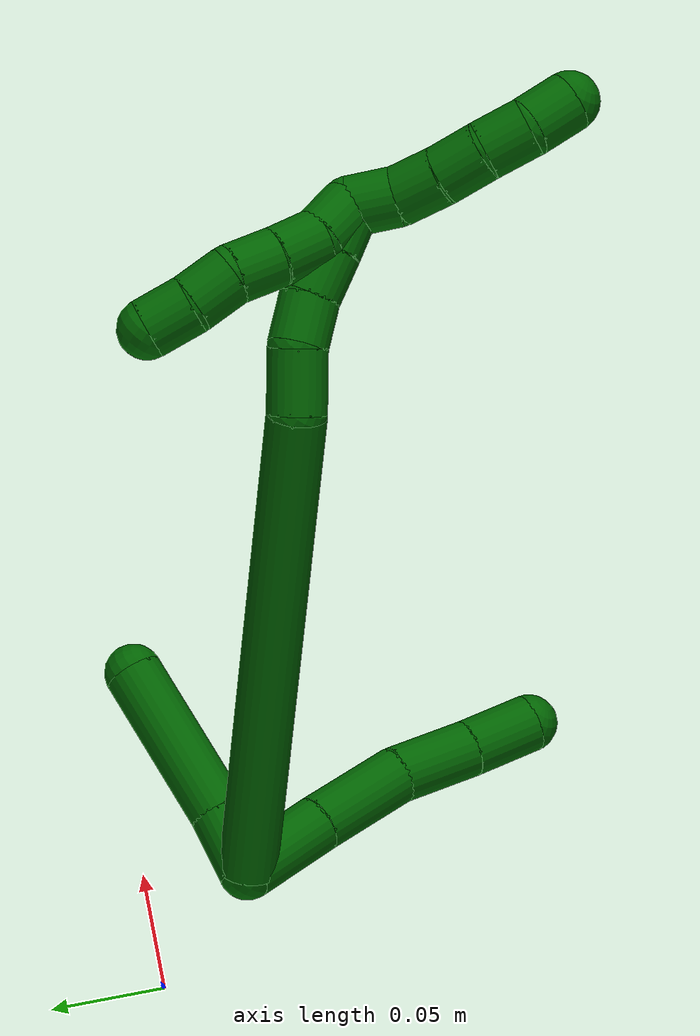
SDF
<sdf version="1.7">
 <world name="default">
  <model name="bin">
   <static>1</static>
   <link name="bottom">
    <collision name="collision-bottom">
     <pose>0 0 -0.01 0 -0 0</pose>
     <geometry><box><size>0.8 0.6 0.02</size></box></geometry>
     <surface>
      <friction><ode><mu>100</mu><mu2>100</mu2></ode></friction>
      <contact><collide_bitmask>65535</collide_bitmask></contact>
     </surface>
    </collision>
   </link>
   <link name="west_wall">
    <collision name="collision-west_wall">
     <pose>-0.41 0 0.1 0 -0 0</pose>
     <geometry><box><size>0.02 0.6 0.2</size></box></geometry>
     <surface>
      <friction><ode><mu>100</mu><mu2>100</mu2></ode></friction>
      <contact><collide_bitmask>65535</collide_bitmask></contact>
     </surface>
    </collision>
   </link>
   <link name="east_wall">
    <collision name="collision-east_wall">
     <pose>0.41 0 0.1 0 -0 0</pose>
     <geometry><box><size>0.02 0.6 0.2</size></box></geometry>
     <surface>
      <friction><ode><mu>100</mu><mu2>100</mu2></ode></friction>
      <contact><collide_bitmask>65535</collide_bitmask></contact>
     </surface>
    </collision>
   </link>
   <link name="south_wall">
    <collision name="collision-south_wall">
     <pose>0 -0.31 0.1 0 -0 0</pose>
     <geometry><box><size>0.8 0.02 0.2</size></box></geometry>
     <surface>
      <friction><ode><mu>100</mu><mu2>100</mu2></ode></friction>
      <contact><collide_bitmask>65535</collide_bitmask></contact>
     </surface>
    </collision>
   </link>
   <link name="north_wall">
    <collision name="collision-north_wall">
     <pose>0 0.31 0.1 0 -0 0</pose>
     <geometry><box><size>0.8 0.02 0.2</size></box></geometry>
     <surface>
      <friction><ode><mu>100</mu><mu2>100</mu2></ode></friction>
      <contact><collide_bitmask>65535</collide_bitmask></contact>
     </surface>
    </collision>
   </link>
  </model>
  <model name="6">
   <static>0</static>
   <link name="6">
    <collision name="collision-cylinder-e_1_2_8">
     <pose>0.001599 -0.016244 0.010715 0.987682 0.082006 0.044164</pose>
     <geometry><cylinder><radius>0.0125</radius><length>0.039052</length></cylinder></geometry>
     <surface>
      <friction><ode><mu>1.16</mu><mu2>1.16</mu2><slip1>0</slip1><slip2>0</slip2></ode></friction>
      <contact><ode><kp>1e+06</kp><kd>1</kd><max_vel>0</max_vel><min_depth>0.001</min_depth></ode></contact>
     </surface>
    </collision>
    <visual name="visual-cylinder-e_1_2_8">
     <pose>0.001599 -0.016244 0.010715 0.987682 0.082006 0.044164</pose>
     <geometry><cylinder><radius>0.0125</radius><length>0.039052</length></cylinder></geometry>
     <material><ambient>0 0.392157 0.003922 1</ambient></material>
    </visual>
    <collision name="collision-cylinder-e_2_8_9">
     <pose>0.004636 -0.051533 0.032965 1.0262 0.064464 0.03633</pose>
     <geometry><cylinder><radius>0.0125</radius><length>0.044622</length></cylinder></geometry>
     <surface>
      <friction><ode><mu>1.16</mu><mu2>1.16</mu2><slip1>0</slip1><slip2>0</slip2></ode></friction>
      <contact><ode><kp>1e+06</kp><kd>1</kd><max_vel>0</max_vel><min_depth>0.001</min_depth></ode></contact>
     </surface>
    </collision>
    <visual name="visual-cylinder-e_2_8_9">
     <pose>0.004636 -0.051533 0.032965 1.0262 0.064464 0.03633</pose>
     <geometry><cylinder><radius>0.0125</radius><length>0.044622</length></cylinder></geometry>
     <material><ambient>0 0.392157 0.003922 1</ambient></material>
    </visual>
    <collision name="collision-cylinder-e_3_9_10">
     <pose>0.003536 -0.085436 0.053906 1.00645 -0.143267 -0.078962</pose>
     <geometry><cylinder><radius>0.0125</radius><length>0.035538</length></cylinder></geometry>
     <surface>
      <friction><ode><mu>1.16</mu><mu2>1.16</mu2><slip1>0</slip1><slip2>0</slip2></ode></friction>
      <contact><ode><kp>1e+06</kp><kd>1</kd><max_vel>0</max_vel><min_depth>0.001</min_depth></ode></contact>
     </surface>
    </collision>
    <visual name="visual-cylinder-e_3_9_10">
     <pose>0.003536 -0.085436 0.053906 1.00645 -0.143267 -0.078962</pose>
     <geometry><cylinder><radius>0.0125</radius><length>0.035538</length></cylinder></geometry>
     <material><ambient>0 0.392157 0.003922 1</ambient></material>
    </visual>
    <collision name="collision-cylinder-e_4_10_6">
     <pose>-0.000816 -0.112855 0.072029 0.964082 -0.118205 -0.061898</pose>
     <geometry><cylinder><radius>0.0125</radius><length>0.030789</length></cylinder></geometry>
     <surface>
      <friction><ode><mu>1.16</mu><mu2>1.16</mu2><slip1>0</slip1><slip2>0</slip2></ode></friction>
      <contact><ode><kp>1e+06</kp><kd>1</kd><max_vel>0</max_vel><min_depth>0.001</min_depth></ode></contact>
     </surface>
    </collision>
    <visual name="visual-cylinder-e_4_10_6">
     <pose>-0.000816 -0.112855 0.072029 0.964082 -0.118205 -0.061898</pose>
     <geometry><cylinder><radius>0.0125</radius><length>0.030789</length></cylinder></geometry>
     <material><ambient>0 0.392157 0.003922 1</ambient></material>
    </visual>
    <collision name="collision-cylinder-e_1_2_11">
     <pose>0.013637 4.1e-05 0.003268 -0.012504 1.33561 -0.009862</pose>
     <geometry><cylinder><radius>0.0125</radius><length>0.028047</length></cylinder></geometry>
     <surface>
      <friction><ode><mu>1.16</mu><mu2>1.16</mu2><slip1>0</slip1><slip2>0</slip2></ode></friction>
      <contact><ode><kp>1e+06</kp><kd>1</kd><max_vel>0</max_vel><min_depth>0.001</min_depth></ode></contact>
     </surface>
    </collision>
    <visual name="visual-cylinder-e_1_2_11">
     <pose>0.013637 4.1e-05 0.003268 -0.012504 1.33561 -0.009862</pose>
     <geometry><cylinder><radius>0.0125</radius><length>0.028047</length></cylinder></geometry>
     <material><ambient>0 0.392157 0.003922 1</ambient></material>
    </visual>
    <collision name="collision-cylinder-e_2_11_5">
     <pose>0.062656 0.002279 0.012671 -0.343854 1.38864 -0.287167</pose>
     <geometry><cylinder><radius>0.0125</radius><length>0.071953</length></cylinder></geometry>
     <surface>
      <friction><ode><mu>1.16</mu><mu2>1.16</mu2><slip1>0</slip1><slip2>0</slip2></ode></friction>
      <contact><ode><kp>1e+06</kp><kd>1</kd><max_vel>0</max_vel><min_depth>0.001</min_depth></ode></contact>
     </surface>
    </collision>
    <visual name="visual-cylinder-e_2_11_5">
     <pose>0.062656 0.002279 0.012671 -0.343854 1.38864 -0.287167</pose>
     <geometry><cylinder><radius>0.0125</radius><length>0.071953</length></cylinder></geometry>
     <material><ambient>0 0.392157 0.003922 1</ambient></material>
    </visual>
    <collision name="collision-cylinder-e_1_2_12">
     <pose>0.042393 0.027026 0.093002 -0.282812 0.412598 -0.059566</pose>
     <geometry><cylinder><radius>0.0125</radius><length>0.211442</length></cylinder></geometry>
     <surface>
      <friction><ode><mu>1.16</mu><mu2>1.16</mu2><slip1>0</slip1><slip2>0</slip2></ode></friction>
      <contact><ode><kp>1e+06</kp><kd>1</kd><max_vel>0</max_vel><min_depth>0.001</min_depth></ode></contact>
     </surface>
    </collision>
    <visual name="visual-cylinder-e_1_2_12">
     <pose>0.042393 0.027026 0.093002 -0.282812 0.412598 -0.059566</pose>
     <geometry><cylinder><radius>0.0125</radius><length>0.211442</length></cylinder></geometry>
     <material><ambient>0 0.392157 0.003922 1</ambient></material>
    </visual>
    <collision name="collision-cylinder-e_2_12_13">
     <pose>0.093628 0.054766 0.196421 -0.068365 0.702628 -0.025065</pose>
     <geometry><cylinder><radius>0.0125</radius><length>0.027365</length></cylinder></geometry>
     <surface>
      <friction><ode><mu>1.16</mu><mu2>1.16</mu2><slip1>0</slip1><slip2>0</slip2></ode></friction>
      <contact><ode><kp>1e+06</kp><kd>1</kd><max_vel>0</max_vel><min_depth>0.001</min_depth></ode></contact>
     </surface>
    </collision>
    <visual name="visual-cylinder-e_2_12_13">
     <pose>0.093628 0.054766 0.196421 -0.068365 0.702628 -0.025065</pose>
     <geometry><cylinder><radius>0.0125</radius><length>0.027365</length></cylinder></geometry>
     <material><ambient>0 0.392157 0.003922 1</ambient></material>
    </visual>
    <collision name="collision-cylinder-e_3_13_14">
     <pose>0.108669 0.05253 0.2145 0.36744 0.646722 0.124382</pose>
     <geometry><cylinder><radius>0.0125</radius><length>0.020575</length></cylinder></geometry>
     <surface>
      <friction><ode><mu>1.16</mu><mu2>1.16</mu2><slip1>0</slip1><slip2>0</slip2></ode></friction>
      <contact><ode><kp>1e+06</kp><kd>1</kd><max_vel>0</max_vel><min_depth>0.001</min_depth></ode></contact>
     </surface>
    </collision>
    <visual name="visual-cylinder-e_3_13_14">
     <pose>0.108669 0.05253 0.2145 0.36744 0.646722 0.124382</pose>
     <geometry><cylinder><radius>0.0125</radius><length>0.020575</length></cylinder></geometry>
     <material><ambient>0 0.392157 0.003922 1</ambient></material>
    </visual>
    <collision name="collision-cylinder-e_4_14_15">
     <pose>0.119535 0.045707 0.230479 0.435845 0.470554 0.106066</pose>
     <geometry><cylinder><radius>0.0125</radius><length>0.020588</length></cylinder></geometry>
     <surface>
      <friction><ode><mu>1.16</mu><mu2>1.16</mu2><slip1>0</slip1><slip2>0</slip2></ode></friction>
      <contact><ode><kp>1e+06</kp><kd>1</kd><max_vel>0</max_vel><min_depth>0.001</min_depth></ode></contact>
     </surface>
    </collision>
    <visual name="visual-cylinder-e_4_14_15">
     <pose>0.119535 0.045707 0.230479 0.435845 0.470554 0.106066</pose>
     <geometry><cylinder><radius>0.0125</radius><length>0.020588</length></cylinder></geometry>
     <material><ambient>0 0.392157 0.003922 1</ambient></material>
    </visual>
    <collision name="collision-cylinder-e_5_15_1">
     <pose>0.129051 0.037997 0.246675 0.45316 0.505426 0.118925</pose>
     <geometry><cylinder><radius>0.0125</radius><length>0.020031</length></cylinder></geometry>
     <surface>
      <friction><ode><mu>1.16</mu><mu2>1.16</mu2><slip1>0</slip1><slip2>0</slip2></ode></friction>
      <contact><ode><kp>1e+06</kp><kd>1</kd><max_vel>0</max_vel><min_depth>0.001</min_depth></ode></contact>
     </surface>
    </collision>
    <visual name="visual-cylinder-e_5_15_1">
     <pose>0.129051 0.037997 0.246675 0.45316 0.505426 0.118925</pose>
     <geometry><cylinder><radius>0.0125</radius><length>0.020031</length></cylinder></geometry>
     <material><ambient>0 0.392157 0.003922 1</ambient></material>
    </visual>
    <collision name="collision-cylinder-e_1_1_16">
     <pose>0.131185 0.041464 0.248286 -2.28004 -0.275019 0.58497</pose>
     <geometry><cylinder><radius>0.0125</radius><length>0.02</length></cylinder></geometry>
     <surface>
      <friction><ode><mu>1.16</mu><mu2>1.16</mu2><slip1>0</slip1><slip2>0</slip2></ode></friction>
      <contact><ode><kp>1e+06</kp><kd>1</kd><max_vel>0</max_vel><min_depth>0.001</min_depth></ode></contact>
     </surface>
    </collision>
    <visual name="visual-cylinder-e_1_1_16">
     <pose>0.131185 0.041464 0.248286 -2.28004 -0.275019 0.58497</pose>
     <geometry><cylinder><radius>0.0125</radius><length>0.02</length></cylinder></geometry>
     <material><ambient>0 0.392157 0.003922 1</ambient></material>
    </visual>
    <collision name="collision-cylinder-e_2_16_17">
     <pose>0.129103 0.056745 0.236022 -2.21533 0.063419 -0.126875</pose>
     <geometry><cylinder><radius>0.0125</radius><length>0.02</length></cylinder></geometry>
     <surface>
      <friction><ode><mu>1.16</mu><mu2>1.16</mu2><slip1>0</slip1><slip2>0</slip2></ode></friction>
      <contact><ode><kp>1e+06</kp><kd>1</kd><max_vel>0</max_vel><min_depth>0.001</min_depth></ode></contact>
     </surface>
    </collision>
    <visual name="visual-cylinder-e_2_16_17">
     <pose>0.129103 0.056745 0.236022 -2.21533 0.063419 -0.126875</pose>
     <geometry><cylinder><radius>0.0125</radius><length>0.02</length></cylinder></geometry>
     <material><ambient>0 0.392157 0.003922 1</ambient></material>
    </visual>
    <collision name="collision-cylinder-e_3_17_18">
     <pose>0.131121 0.072499 0.223893 -2.23858 0.138889 -0.284937</pose>
     <geometry><cylinder><radius>0.0125</radius><length>0.02</length></cylinder></geometry>
     <surface>
      <friction><ode><mu>1.16</mu><mu2>1.16</mu2><slip1>0</slip1><slip2>0</slip2></ode></friction>
      <contact><ode><kp>1e+06</kp><kd>1</kd><max_vel>0</max_vel><min_depth>0.001</min_depth></ode></contact>
     </surface>
    </collision>
    <visual name="visual-cylinder-e_3_17_18">
     <pose>0.131121 0.072499 0.223893 -2.23858 0.138889 -0.284937</pose>
     <geometry><cylinder><radius>0.0125</radius><length>0.02</length></cylinder></geometry>
     <material><ambient>0 0.392157 0.003922 1</ambient></material>
    </visual>
    <collision name="collision-cylinder-e_4_18_19">
     <pose>0.132576 0.086158 0.209674 -2.51266 0.007018 -0.021577</pose>
     <geometry><cylinder><radius>0.0125</radius><length>0.02</length></cylinder></geometry>
     <surface>
      <friction><ode><mu>1.16</mu><mu2>1.16</mu2><slip1>0</slip1><slip2>0</slip2></ode></friction>
      <contact><ode><kp>1e+06</kp><kd>1</kd><max_vel>0</max_vel><min_depth>0.001</min_depth></ode></contact>
     </surface>
    </collision>
    <visual name="visual-cylinder-e_4_18_19">
     <pose>0.132576 0.086158 0.209674 -2.51266 0.007018 -0.021577</pose>
     <geometry><cylinder><radius>0.0125</radius><length>0.02</length></cylinder></geometry>
     <material><ambient>0 0.392157 0.003922 1</ambient></material>
    </visual>
    <collision name="collision-cylinder-e_5_19_4">
     <pose>0.134308 0.097221 0.193197 -2.58846 0.166976 -0.5734</pose>
     <geometry><cylinder><radius>0.0125</radius><length>0.02</length></cylinder></geometry>
     <surface>
      <friction><ode><mu>1.16</mu><mu2>1.16</mu2><slip1>0</slip1><slip2>0</slip2></ode></friction>
      <contact><ode><kp>1e+06</kp><kd>1</kd><max_vel>0</max_vel><min_depth>0.001</min_depth></ode></contact>
     </surface>
    </collision>
    <visual name="visual-cylinder-e_5_19_4">
     <pose>0.134308 0.097221 0.193197 -2.58846 0.166976 -0.5734</pose>
     <geometry><cylinder><radius>0.0125</radius><length>0.02</length></cylinder></geometry>
     <material><ambient>0 0.392157 0.003922 1</ambient></material>
    </visual>
    <collision name="collision-cylinder-e_1_1_20">
     <pose>0.129281 0.028965 0.261742 0.625882 -0.480235 -0.158118</pose>
     <geometry><cylinder><radius>0.0125</radius><length>0.02</length></cylinder></geometry>
     <surface>
      <friction><ode><mu>1.16</mu><mu2>1.16</mu2><slip1>0</slip1><slip2>0</slip2></ode></friction>
      <contact><ode><kp>1e+06</kp><kd>1</kd><max_vel>0</max_vel><min_depth>0.001</min_depth></ode></contact>
     </surface>
    </collision>
    <visual name="visual-cylinder-e_1_1_20">
     <pose>0.129281 0.028965 0.261742 0.625882 -0.480235 -0.158118</pose>
     <geometry><cylinder><radius>0.0125</radius><length>0.02</length></cylinder></geometry>
     <material><ambient>0 0.392157 0.003922 1</ambient></material>
    </visual>
    <collision name="collision-cylinder-e_2_20_21">
     <pose>0.121235 0.020798 0.277842 0.321853 -0.349682 -0.057334</pose>
     <geometry><cylinder><radius>0.0125</radius><length>0.02</length></cylinder></geometry>
     <surface>
      <friction><ode><mu>1.16</mu><mu2>1.16</mu2><slip1>0</slip1><slip2>0</slip2></ode></friction>
      <contact><ode><kp>1e+06</kp><kd>1</kd><max_vel>0</max_vel><min_depth>0.001</min_depth></ode></contact>
     </surface>
    </collision>
    <visual name="visual-cylinder-e_2_20_21">
     <pose>0.121235 0.020798 0.277842 0.321853 -0.349682 -0.057334</pose>
     <geometry><cylinder><radius>0.0125</radius><length>0.02</length></cylinder></geometry>
     <material><ambient>0 0.392157 0.003922 1</ambient></material>
    </visual>
    <collision name="collision-cylinder-e_3_21_22">
     <pose>0.115248 0.014569 0.295856 0.343611 -0.25899 -0.045184</pose>
     <geometry><cylinder><radius>0.0125</radius><length>0.02</length></cylinder></geometry>
     <surface>
      <friction><ode><mu>1.16</mu><mu2>1.16</mu2><slip1>0</slip1><slip2>0</slip2></ode></friction>
      <contact><ode><kp>1e+06</kp><kd>1</kd><max_vel>0</max_vel><min_depth>0.001</min_depth></ode></contact>
     </surface>
    </collision>
    <visual name="visual-cylinder-e_3_21_22">
     <pose>0.115248 0.014569 0.295856 0.343611 -0.25899 -0.045184</pose>
     <geometry><cylinder><radius>0.0125</radius><length>0.02</length></cylinder></geometry>
     <material><ambient>0 0.392157 0.003922 1</ambient></material>
    </visual>
    <collision name="collision-cylinder-e_4_22_23">
     <pose>0.110566 0.006465 0.313442 0.519095 -0.213709 -0.056949</pose>
     <geometry><cylinder><radius>0.0125</radius><length>0.02</length></cylinder></geometry>
     <surface>
      <friction><ode><mu>1.16</mu><mu2>1.16</mu2><slip1>0</slip1><slip2>0</slip2></ode></friction>
      <contact><ode><kp>1e+06</kp><kd>1</kd><max_vel>0</max_vel><min_depth>0.001</min_depth></ode></contact>
     </surface>
    </collision>
    <visual name="visual-cylinder-e_4_22_23">
     <pose>0.110566 0.006465 0.313442 0.519095 -0.213709 -0.056949</pose>
     <geometry><cylinder><radius>0.0125</radius><length>0.02</length></cylinder></geometry>
     <material><ambient>0 0.392157 0.003922 1</ambient></material>
    </visual>
    <collision name="collision-cylinder-e_5_23_3">
     <pose>0.108258 -0.005171 0.329268 0.746255 -0.018737 -0.007335</pose>
     <geometry><cylinder><radius>0.0125</radius><length>0.02</length></cylinder></geometry>
     <surface>
      <friction><ode><mu>1.16</mu><mu2>1.16</mu2><slip1>0</slip1><slip2>0</slip2></ode></friction>
      <contact><ode><kp>1e+06</kp><kd>1</kd><max_vel>0</max_vel><min_depth>0.001</min_depth></ode></contact>
     </surface>
    </collision>
    <visual name="visual-cylinder-e_5_23_3">
     <pose>0.108258 -0.005171 0.329268 0.746255 -0.018737 -0.007335</pose>
     <geometry><cylinder><radius>0.0125</radius><length>0.02</length></cylinder></geometry>
     <material><ambient>0 0.392157 0.003922 1</ambient></material>
    </visual>
    <collision name="collision-sphere-3">
     <pose>0.10807 -0.011959 0.33661 0 -0 0</pose>
     <geometry><sphere><radius>0.0125</radius></sphere></geometry>
     <surface>
      <friction><ode><mu>1.16</mu><mu2>1.16</mu2><slip1>0</slip1><slip2>0</slip2></ode></friction>
      <contact><ode><kp>1e+06</kp><kd>1</kd><max_vel>0</max_vel><min_depth>0.001</min_depth></ode></contact>
     </surface>
    </collision>
    <visual name="visual-sphere-3">
     <pose>0.10807 -0.011959 0.33661 0 -0 0</pose>
     <geometry><sphere><radius>0.0125</radius></sphere></geometry>
     <material><ambient>0 0.392157 0.003922 1</ambient></material>
    </visual>
    <collision name="collision-sphere-23">
     <pose>0.108445 0.001617 0.321927 0 -0 0</pose>
     <geometry><sphere><radius>0.0125</radius></sphere></geometry>
     <surface>
      <friction><ode><mu>1.16</mu><mu2>1.16</mu2><slip1>0</slip1><slip2>0</slip2></ode></friction>
      <contact><ode><kp>1e+06</kp><kd>1</kd><max_vel>0</max_vel><min_depth>0.001</min_depth></ode></contact>
     </surface>
    </collision>
    <visual name="visual-sphere-23">
     <pose>0.108445 0.001617 0.321927 0 -0 0</pose>
     <geometry><sphere><radius>0.0125</radius></sphere></geometry>
     <material><ambient>0 0.392157 0.003922 1</ambient></material>
    </visual>
    <collision name="collision-sphere-22">
     <pose>0.112687 0.011313 0.304957 0 -0 0</pose>
     <geometry><sphere><radius>0.0125</radius></sphere></geometry>
     <surface>
      <friction><ode><mu>1.16</mu><mu2>1.16</mu2><slip1>0</slip1><slip2>0</slip2></ode></friction>
      <contact><ode><kp>1e+06</kp><kd>1</kd><max_vel>0</max_vel><min_depth>0.001</min_depth></ode></contact>
     </surface>
    </collision>
    <visual name="visual-sphere-22">
     <pose>0.112687 0.011313 0.304957 0 -0 0</pose>
     <geometry><sphere><radius>0.0125</radius></sphere></geometry>
     <material><ambient>0 0.392157 0.003922 1</ambient></material>
    </visual>
    <collision name="collision-sphere-21">
     <pose>0.117809 0.017826 0.286754 0 -0 0</pose>
     <geometry><sphere><radius>0.0125</radius></sphere></geometry>
     <surface>
      <friction><ode><mu>1.16</mu><mu2>1.16</mu2><slip1>0</slip1><slip2>0</slip2></ode></friction>
      <contact><ode><kp>1e+06</kp><kd>1</kd><max_vel>0</max_vel><min_depth>0.001</min_depth></ode></contact>
     </surface>
    </collision>
    <visual name="visual-sphere-21">
     <pose>0.117809 0.017826 0.286754 0 -0 0</pose>
     <geometry><sphere><radius>0.0125</radius></sphere></geometry>
     <material><ambient>0 0.392157 0.003922 1</ambient></material>
    </visual>
    <collision name="collision-sphere-20">
     <pose>0.124661 0.02377 0.268929 0 -0 0</pose>
     <geometry><sphere><radius>0.0125</radius></sphere></geometry>
     <surface>
      <friction><ode><mu>1.16</mu><mu2>1.16</mu2><slip1>0</slip1><slip2>0</slip2></ode></friction>
      <contact><ode><kp>1e+06</kp><kd>1</kd><max_vel>0</max_vel><min_depth>0.001</min_depth></ode></contact>
     </surface>
    </collision>
    <visual name="visual-sphere-20">
     <pose>0.124661 0.02377 0.268929 0 -0 0</pose>
     <geometry><sphere><radius>0.0125</radius></sphere></geometry>
     <material><ambient>0 0.392157 0.003922 1</ambient></material>
    </visual>
    <collision name="collision-sphere-4">
     <pose>0.13597 0.102402 0.184806 0 -0 0</pose>
     <geometry><sphere><radius>0.0125</radius></sphere></geometry>
     <surface>
      <friction><ode><mu>1.16</mu><mu2>1.16</mu2><slip1>0</slip1><slip2>0</slip2></ode></friction>
      <contact><ode><kp>1e+06</kp><kd>1</kd><max_vel>0</max_vel><min_depth>0.001</min_depth></ode></contact>
     </surface>
    </collision>
    <visual name="visual-sphere-4">
     <pose>0.13597 0.102402 0.184806 0 -0 0</pose>
     <geometry><sphere><radius>0.0125</radius></sphere></geometry>
     <material><ambient>0 0.392157 0.003922 1</ambient></material>
    </visual>
    <collision name="collision-sphere-11">
     <pose>0.027275 8.2e-05 0.006535 0 -0 0</pose>
     <geometry><sphere><radius>0.0125</radius></sphere></geometry>
     <surface>
      <friction><ode><mu>1.16</mu><mu2>1.16</mu2><slip1>0</slip1><slip2>0</slip2></ode></friction>
      <contact><ode><kp>1e+06</kp><kd>1</kd><max_vel>0</max_vel><min_depth>0.001</min_depth></ode></contact>
     </surface>
    </collision>
    <visual name="visual-sphere-11">
     <pose>0.027275 8.2e-05 0.006535 0 -0 0</pose>
     <geometry><sphere><radius>0.0125</radius></sphere></geometry>
     <material><ambient>0 0.392157 0.003922 1</ambient></material>
    </visual>
    <collision name="collision-sphere-6">
     <pose>-0.002632 -0.125413 0.080745 0 -0 0</pose>
     <geometry><sphere><radius>0.0125</radius></sphere></geometry>
     <surface>
      <friction><ode><mu>1.16</mu><mu2>1.16</mu2><slip1>0</slip1><slip2>0</slip2></ode></friction>
      <contact><ode><kp>1e+06</kp><kd>1</kd><max_vel>0</max_vel><min_depth>0.001</min_depth></ode></contact>
     </surface>
    </collision>
    <visual name="visual-sphere-6">
     <pose>-0.002632 -0.125413 0.080745 0 -0 0</pose>
     <geometry><sphere><radius>0.0125</radius></sphere></geometry>
     <material><ambient>0 0.392157 0.003922 1</ambient></material>
    </visual>
    <collision name="collision-sphere-10">
     <pose>0.000999 -0.100296 0.063313 0 -0 0</pose>
     <geometry><sphere><radius>0.0125</radius></sphere></geometry>
     <surface>
      <friction><ode><mu>1.16</mu><mu2>1.16</mu2><slip1>0</slip1><slip2>0</slip2></ode></friction>
      <contact><ode><kp>1e+06</kp><kd>1</kd><max_vel>0</max_vel><min_depth>0.001</min_depth></ode></contact>
     </surface>
    </collision>
    <visual name="visual-sphere-10">
     <pose>0.000999 -0.100296 0.063313 0 -0 0</pose>
     <geometry><sphere><radius>0.0125</radius></sphere></geometry>
     <material><ambient>0 0.392157 0.003922 1</ambient></material>
    </visual>
    <collision name="collision-sphere-9">
     <pose>0.006073 -0.070576 0.0445 0 -0 0</pose>
     <geometry><sphere><radius>0.0125</radius></sphere></geometry>
     <surface>
      <friction><ode><mu>1.16</mu><mu2>1.16</mu2><slip1>0</slip1><slip2>0</slip2></ode></friction>
      <contact><ode><kp>1e+06</kp><kd>1</kd><max_vel>0</max_vel><min_depth>0.001</min_depth></ode></contact>
     </surface>
    </collision>
    <visual name="visual-sphere-9">
     <pose>0.006073 -0.070576 0.0445 0 -0 0</pose>
     <geometry><sphere><radius>0.0125</radius></sphere></geometry>
     <material><ambient>0 0.392157 0.003922 1</ambient></material>
    </visual>
    <collision name="collision-sphere-2">
     <geometry><sphere><radius>0.0125</radius></sphere></geometry>
     <surface>
      <friction><ode><mu>1.16</mu><mu2>1.16</mu2><slip1>0</slip1><slip2>0</slip2></ode></friction>
      <contact><ode><kp>1e+06</kp><kd>1</kd><max_vel>0</max_vel><min_depth>0.001</min_depth></ode></contact>
     </surface>
    </collision>
    <visual name="visual-sphere-2">
     <geometry><sphere><radius>0.0125</radius></sphere></geometry>
     <material><ambient>0 0.392157 0.003922 1</ambient></material>
    </visual>
    <collision name="collision-sphere-19">
     <pose>0.132646 0.092041 0.201587 0 -0 0</pose>
     <geometry><sphere><radius>0.0125</radius></sphere></geometry>
     <surface>
      <friction><ode><mu>1.16</mu><mu2>1.16</mu2><slip1>0</slip1><slip2>0</slip2></ode></friction>
      <contact><ode><kp>1e+06</kp><kd>1</kd><max_vel>0</max_vel><min_depth>0.001</min_depth></ode></contact>
     </surface>
    </collision>
    <visual name="visual-sphere-19">
     <pose>0.132646 0.092041 0.201587 0 -0 0</pose>
     <geometry><sphere><radius>0.0125</radius></sphere></geometry>
     <material><ambient>0 0.392157 0.003922 1</ambient></material>
    </visual>
    <collision name="collision-sphere-8">
     <pose>0.003199 -0.032489 0.021431 0 -0 0</pose>
     <geometry><sphere><radius>0.0125</radius></sphere></geometry>
     <surface>
      <friction><ode><mu>1.16</mu><mu2>1.16</mu2><slip1>0</slip1><slip2>0</slip2></ode></friction>
      <contact><ode><kp>1e+06</kp><kd>1</kd><max_vel>0</max_vel><min_depth>0.001</min_depth></ode></contact>
     </surface>
    </collision>
    <visual name="visual-sphere-8">
     <pose>0.003199 -0.032489 0.021431 0 -0 0</pose>
     <geometry><sphere><radius>0.0125</radius></sphere></geometry>
     <material><ambient>0 0.392157 0.003922 1</ambient></material>
    </visual>
    <collision name="collision-sphere-5">
     <pose>0.098037 0.004476 0.018806 0 -0 0</pose>
     <geometry><sphere><radius>0.0125</radius></sphere></geometry>
     <surface>
      <friction><ode><mu>1.16</mu><mu2>1.16</mu2><slip1>0</slip1><slip2>0</slip2></ode></friction>
      <contact><ode><kp>1e+06</kp><kd>1</kd><max_vel>0</max_vel><min_depth>0.001</min_depth></ode></contact>
     </surface>
    </collision>
    <visual name="visual-sphere-5">
     <pose>0.098037 0.004476 0.018806 0 -0 0</pose>
     <geometry><sphere><radius>0.0125</radius></sphere></geometry>
     <material><ambient>0 0.392157 0.003922 1</ambient></material>
    </visual>
    <collision name="collision-sphere-12">
     <pose>0.084786 0.054053 0.186003 0 -0 0</pose>
     <geometry><sphere><radius>0.0125</radius></sphere></geometry>
     <surface>
      <friction><ode><mu>1.16</mu><mu2>1.16</mu2><slip1>0</slip1><slip2>0</slip2></ode></friction>
      <contact><ode><kp>1e+06</kp><kd>1</kd><max_vel>0</max_vel><min_depth>0.001</min_depth></ode></contact>
     </surface>
    </collision>
    <visual name="visual-sphere-12">
     <pose>0.084786 0.054053 0.186003 0 -0 0</pose>
     <geometry><sphere><radius>0.0125</radius></sphere></geometry>
     <material><ambient>0 0.392157 0.003922 1</ambient></material>
    </visual>
    <collision name="collision-sphere-13">
     <pose>0.10247 0.055479 0.206838 0 -0 0</pose>
     <geometry><sphere><radius>0.0125</radius></sphere></geometry>
     <surface>
      <friction><ode><mu>1.16</mu><mu2>1.16</mu2><slip1>0</slip1><slip2>0</slip2></ode></friction>
      <contact><ode><kp>1e+06</kp><kd>1</kd><max_vel>0</max_vel><min_depth>0.001</min_depth></ode></contact>
     </surface>
    </collision>
    <visual name="visual-sphere-13">
     <pose>0.10247 0.055479 0.206838 0 -0 0</pose>
     <geometry><sphere><radius>0.0125</radius></sphere></geometry>
     <material><ambient>0 0.392157 0.003922 1</ambient></material>
    </visual>
    <collision name="collision-sphere-14">
     <pose>0.114868 0.049581 0.222162 0 -0 0</pose>
     <geometry><sphere><radius>0.0125</radius></sphere></geometry>
     <surface>
      <friction><ode><mu>1.16</mu><mu2>1.16</mu2><slip1>0</slip1><slip2>0</slip2></ode></friction>
      <contact><ode><kp>1e+06</kp><kd>1</kd><max_vel>0</max_vel><min_depth>0.001</min_depth></ode></contact>
     </surface>
    </collision>
    <visual name="visual-sphere-14">
     <pose>0.114868 0.049581 0.222162 0 -0 0</pose>
     <geometry><sphere><radius>0.0125</radius></sphere></geometry>
     <material><ambient>0 0.392157 0.003922 1</ambient></material>
    </visual>
    <collision name="collision-sphere-15">
     <pose>0.124202 0.041834 0.238797 0 -0 0</pose>
     <geometry><sphere><radius>0.0125</radius></sphere></geometry>
     <surface>
      <friction><ode><mu>1.16</mu><mu2>1.16</mu2><slip1>0</slip1><slip2>0</slip2></ode></friction>
      <contact><ode><kp>1e+06</kp><kd>1</kd><max_vel>0</max_vel><min_depth>0.001</min_depth></ode></contact>
     </surface>
    </collision>
    <visual name="visual-sphere-15">
     <pose>0.124202 0.041834 0.238797 0 -0 0</pose>
     <geometry><sphere><radius>0.0125</radius></sphere></geometry>
     <material><ambient>0 0.392157 0.003922 1</ambient></material>
    </visual>
    <collision name="collision-sphere-1">
     <pose>0.133901 0.034161 0.254554 0 -0 0</pose>
     <geometry><sphere><radius>0.0125</radius></sphere></geometry>
     <surface>
      <friction><ode><mu>1.16</mu><mu2>1.16</mu2><slip1>0</slip1><slip2>0</slip2></ode></friction>
      <contact><ode><kp>1e+06</kp><kd>1</kd><max_vel>0</max_vel><min_depth>0.001</min_depth></ode></contact>
     </surface>
    </collision>
    <visual name="visual-sphere-1">
     <pose>0.133901 0.034161 0.254554 0 -0 0</pose>
     <geometry><sphere><radius>0.0125</radius></sphere></geometry>
     <material><ambient>0 0.392157 0.003922 1</ambient></material>
    </visual>
    <collision name="collision-sphere-18">
     <pose>0.132506 0.080275 0.21776 0 -0 0</pose>
     <geometry><sphere><radius>0.0125</radius></sphere></geometry>
     <surface>
      <friction><ode><mu>1.16</mu><mu2>1.16</mu2><slip1>0</slip1><slip2>0</slip2></ode></friction>
      <contact><ode><kp>1e+06</kp><kd>1</kd><max_vel>0</max_vel><min_depth>0.001</min_depth></ode></contact>
     </surface>
    </collision>
    <visual name="visual-sphere-18">
     <pose>0.132506 0.080275 0.21776 0 -0 0</pose>
     <geometry><sphere><radius>0.0125</radius></sphere></geometry>
     <material><ambient>0 0.392157 0.003922 1</ambient></material>
    </visual>
    <collision name="collision-sphere-16">
     <pose>0.128469 0.048767 0.242018 0 -0 0</pose>
     <geometry><sphere><radius>0.0125</radius></sphere></geometry>
     <surface>
      <friction><ode><mu>1.16</mu><mu2>1.16</mu2><slip1>0</slip1><slip2>0</slip2></ode></friction>
      <contact><ode><kp>1e+06</kp><kd>1</kd><max_vel>0</max_vel><min_depth>0.001</min_depth></ode></contact>
     </surface>
    </collision>
    <visual name="visual-sphere-16">
     <pose>0.128469 0.048767 0.242018 0 -0 0</pose>
     <geometry><sphere><radius>0.0125</radius></sphere></geometry>
     <material><ambient>0 0.392157 0.003922 1</ambient></material>
    </visual>
    <collision name="collision-sphere-17">
     <pose>0.129737 0.064723 0.230026 0 -0 0</pose>
     <geometry><sphere><radius>0.0125</radius></sphere></geometry>
     <surface>
      <friction><ode><mu>1.16</mu><mu2>1.16</mu2><slip1>0</slip1><slip2>0</slip2></ode></friction>
      <contact><ode><kp>1e+06</kp><kd>1</kd><max_vel>0</max_vel><min_depth>0.001</min_depth></ode></contact>
     </surface>
    </collision>
    <visual name="visual-sphere-17">
     <pose>0.129737 0.064723 0.230026 0 -0 0</pose>
     <geometry><sphere><radius>0.0125</radius></sphere></geometry>
     <material><ambient>0 0.392157 0.003922 1</ambient></material>
    </visual>
    <inertial>
     <pose>0.065234 0.012148 0.130599 0 -0 0</pose>
     <mass>0.75</mass>
     <inertia>
      <ixx>0.000748</ixx>
      <ixy>0</ixy>
      <ixz>0</ixz>
      <iyy>0.000776</iyy>
      <iyz>0</iyz>
      <izz>-0.000514</izz>
     </inertia>
    </inertial>
   </link>
   <pose>0.037868 -0.044971 0.07248 0.965624 0.301624 0.462661</pose>
  </model>
 </world>
</sdf>
